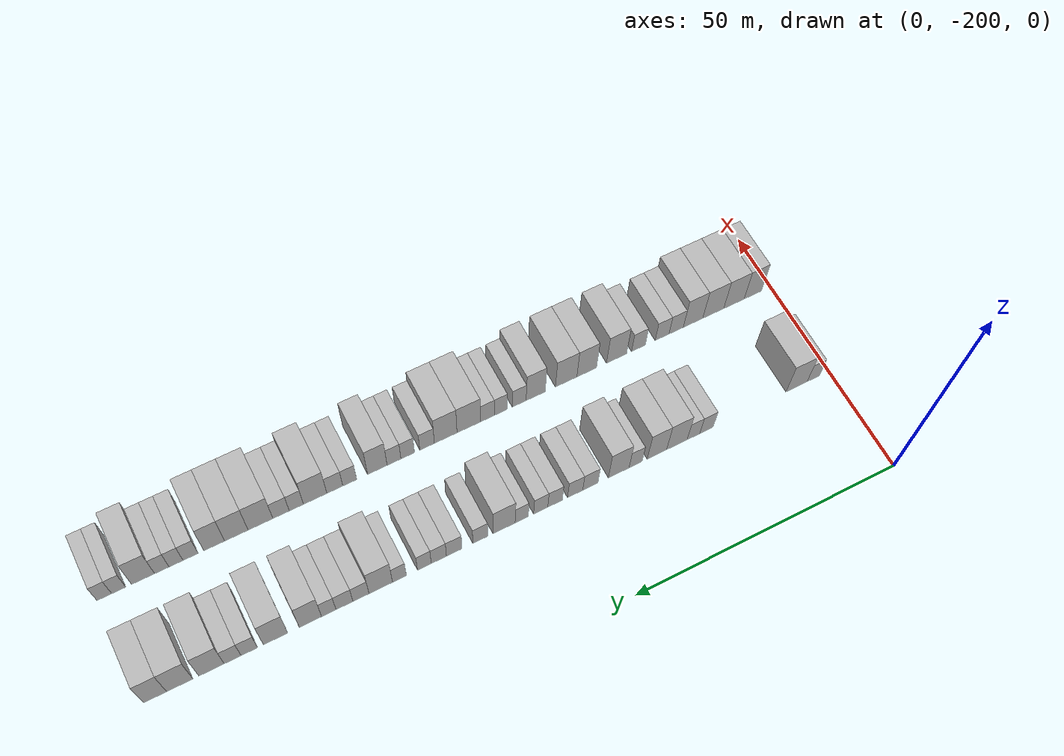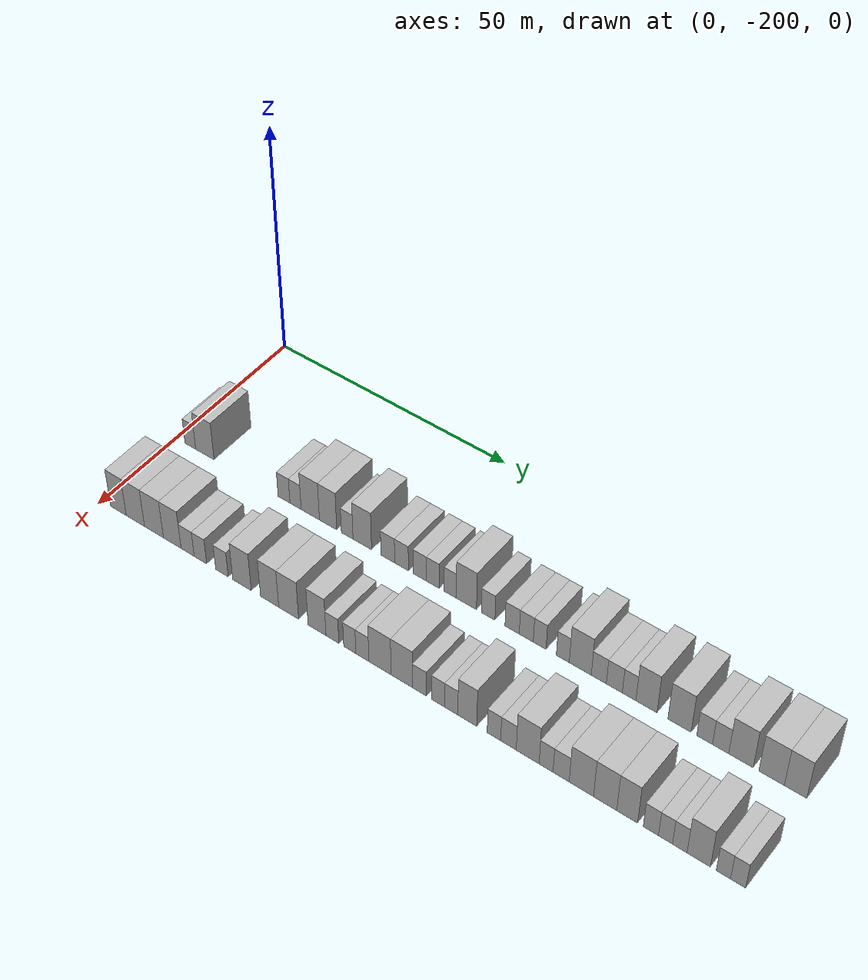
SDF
<sdf version="1.6">
 <world name="default">
  <model name="building_1">
   <static>1</static>
   <pose>25.0000 -196.7380 0 0.000000 0.000000 0.000000</pose>
   <link name="link">
    <pose>0 0 3.00 0 0 0</pose>
    <collision name="collision"><geometry><box><size>10.0000 2.5241 6.0000</size></box></geometry></collision>
    <visual name="visual">
     <cast_shadows>0</cast_shadows>
     <geometry><box><size>10.0000 2.5241 6.0000</size></box></geometry>
     <material>
      <script>
       <uri>model://HANNAS_wall/materials/scripts</uri>
       <uri>model://HANNAS_wall/materials/textures</uri>
       <name>vrc/HANNAS_wall</name>
      </script>
     </material>
    </visual>
   </link>
  </model>
  <model name="building_2">
   <static>1</static>
   <pose>25.0000 -193.3322 0 0.000000 0.000000 0.000000</pose>
   <link name="link">
    <pose>0 0 4.50 0 0 0</pose>
    <collision name="collision"><geometry><box><size>10.0000 4.2874 9.0000</size></box></geometry></collision>
    <visual name="visual">
     <cast_shadows>0</cast_shadows>
     <geometry><box><size>10.0000 4.2874 9.0000</size></box></geometry>
     <material>
      <script>
       <uri>model://HANNAS_wall/materials/scripts</uri>
       <uri>model://HANNAS_wall/materials/textures</uri>
       <name>vrc/HANNAS_wall</name>
      </script>
     </material>
    </visual>
   </link>
  </model>
  <model name="building_3">
   <static>1</static>
   <pose>25.0000 -175.2250 0 0.000000 0.000000 0.000000</pose>
   <link name="link">
    <pose>0 0 3.00 0 0 0</pose>
    <collision name="collision"><geometry><box><size>10.0000 2.6423 6.0000</size></box></geometry></collision>
    <visual name="visual">
     <cast_shadows>0</cast_shadows>
     <geometry><box><size>10.0000 2.6423 6.0000</size></box></geometry>
     <material>
      <script>
       <uri>model://HANNAS_wall/materials/scripts</uri>
       <uri>model://HANNAS_wall/materials/textures</uri>
       <name>vrc/HANNAS_wall</name>
      </script>
     </material>
    </visual>
   </link>
  </model>
  <model name="building_4">
   <static>1</static>
   <pose>25.0000 -172.6611 0 0.000000 0.000000 0.000000</pose>
   <link name="link">
    <pose>0 0 3.00 0 0 0</pose>
    <collision name="collision"><geometry><box><size>10.0000 2.4855 6.0000</size></box></geometry></collision>
    <visual name="visual">
     <cast_shadows>0</cast_shadows>
     <geometry><box><size>10.0000 2.4855 6.0000</size></box></geometry>
     <material>
      <script>
       <uri>model://HANNAS_wall/materials/scripts</uri>
       <uri>model://HANNAS_wall/materials/textures</uri>
       <name>vrc/HANNAS_wall</name>
      </script>
     </material>
    </visual>
   </link>
  </model>
  <model name="building_5">
   <static>1</static>
   <pose>25.0000 -169.4083 0 0.000000 0.000000 0.000000</pose>
   <link name="link">
    <pose>0 0 4.50 0 0 0</pose>
    <collision name="collision"><geometry><box><size>10.0000 4.0203 9.0000</size></box></geometry></collision>
    <visual name="visual">
     <cast_shadows>0</cast_shadows>
     <geometry><box><size>10.0000 4.0203 9.0000</size></box></geometry>
     <material>
      <script>
       <uri>model://HANNAS_wall/materials/scripts</uri>
       <uri>model://HANNAS_wall/materials/textures</uri>
       <name>vrc/HANNAS_wall</name>
      </script>
     </material>
    </visual>
   </link>
  </model>
  <model name="building_6">
   <static>1</static>
   <pose>25.0000 -165.5061 0 0.000000 0.000000 0.000000</pose>
   <link name="link">
    <pose>0 0 4.50 0 0 0</pose>
    <collision name="collision"><geometry><box><size>10.0000 3.7842 9.0000</size></box></geometry></collision>
    <visual name="visual">
     <cast_shadows>0</cast_shadows>
     <geometry><box><size>10.0000 3.7842 9.0000</size></box></geometry>
     <material>
      <script>
       <uri>model://HANNAS_wall/materials/scripts</uri>
       <uri>model://HANNAS_wall/materials/textures</uri>
       <name>vrc/HANNAS_wall</name>
      </script>
     </material>
    </visual>
   </link>
  </model>
  <model name="building_7">
   <static>1</static>
   <pose>25.0000 -161.3549 0 0.000000 0.000000 0.000000</pose>
   <link name="link">
    <pose>0 0 3.00 0 0 0</pose>
    <collision name="collision"><geometry><box><size>10.0000 2.5181 6.0000</size></box></geometry></collision>
    <visual name="visual">
     <cast_shadows>0</cast_shadows>
     <geometry><box><size>10.0000 2.5181 6.0000</size></box></geometry>
     <material>
      <script>
       <uri>model://HANNAS_wall/materials/scripts</uri>
       <uri>model://HANNAS_wall/materials/textures</uri>
       <name>vrc/HANNAS_wall</name>
      </script>
     </material>
    </visual>
   </link>
  </model>
  <model name="building_8">
   <static>1</static>
   <pose>25.0000 -158.1094 0 0.000000 0.000000 0.000000</pose>
   <link name="link">
    <pose>0 0 4.50 0 0 0</pose>
    <collision name="collision"><geometry><box><size>10.0000 3.9730 9.0000</size></box></geometry></collision>
    <visual name="visual">
     <cast_shadows>0</cast_shadows>
     <geometry><box><size>10.0000 3.9730 9.0000</size></box></geometry>
     <material>
      <script>
       <uri>model://HANNAS_wall/materials/scripts</uri>
       <uri>model://HANNAS_wall/materials/textures</uri>
       <name>vrc/HANNAS_wall</name>
      </script>
     </material>
    </visual>
   </link>
  </model>
  <model name="building_9">
   <static>1</static>
   <pose>25.0000 -152.6712 0 0.000000 0.000000 0.000000</pose>
   <link name="link">
    <pose>0 0 3.00 0 0 0</pose>
    <collision name="collision"><geometry><box><size>10.0000 2.9033 6.0000</size></box></geometry></collision>
    <visual name="visual">
     <cast_shadows>0</cast_shadows>
     <geometry><box><size>10.0000 2.9033 6.0000</size></box></geometry>
     <material>
      <script>
       <uri>model://HANNAS_wall/materials/scripts</uri>
       <uri>model://HANNAS_wall/materials/textures</uri>
       <name>vrc/HANNAS_wall</name>
      </script>
     </material>
    </visual>
   </link>
  </model>
  <model name="building_10">
   <static>1</static>
   <pose>25.0000 -149.7835 0 0.000000 0.000000 0.000000</pose>
   <link name="link">
    <pose>0 0 3.00 0 0 0</pose>
    <collision name="collision"><geometry><box><size>10.0000 2.8720 6.0000</size></box></geometry></collision>
    <visual name="visual">
     <cast_shadows>0</cast_shadows>
     <geometry><box><size>10.0000 2.8720 6.0000</size></box></geometry>
     <material>
      <script>
       <uri>model://HANNAS_wall/materials/scripts</uri>
       <uri>model://HANNAS_wall/materials/textures</uri>
       <name>vrc/HANNAS_wall</name>
      </script>
     </material>
    </visual>
   </link>
  </model>
  <model name="building_11">
   <static>1</static>
   <pose>25.0000 -145.9780 0 0.000000 0.000000 0.000000</pose>
   <link name="link">
    <pose>0 0 3.00 0 0 0</pose>
    <collision name="collision"><geometry><box><size>10.0000 2.7389 6.0000</size></box></geometry></collision>
    <visual name="visual">
     <cast_shadows>0</cast_shadows>
     <geometry><box><size>10.0000 2.7389 6.0000</size></box></geometry>
     <material>
      <script>
       <uri>model://HANNAS_wall/materials/scripts</uri>
       <uri>model://HANNAS_wall/materials/textures</uri>
       <name>vrc/HANNAS_wall</name>
      </script>
     </material>
    </visual>
   </link>
  </model>
  <model name="building_12">
   <static>1</static>
   <pose>25.0000 -143.2816 0 0.000000 0.000000 0.000000</pose>
   <link name="link">
    <pose>0 0 3.00 0 0 0</pose>
    <collision name="collision"><geometry><box><size>10.0000 2.6540 6.0000</size></box></geometry></collision>
    <visual name="visual">
     <cast_shadows>0</cast_shadows>
     <geometry><box><size>10.0000 2.6540 6.0000</size></box></geometry>
     <material>
      <script>
       <uri>model://HANNAS_wall/materials/scripts</uri>
       <uri>model://HANNAS_wall/materials/textures</uri>
       <name>vrc/HANNAS_wall</name>
      </script>
     </material>
    </visual>
   </link>
  </model>
  <model name="building_13">
   <static>1</static>
   <pose>25.0000 -139.7228 0 0.000000 0.000000 0.000000</pose>
   <link name="link">
    <pose>0 0 3.00 0 0 0</pose>
    <collision name="collision"><geometry><box><size>10.0000 2.4635 6.0000</size></box></geometry></collision>
    <visual name="visual">
     <cast_shadows>0</cast_shadows>
     <geometry><box><size>10.0000 2.4635 6.0000</size></box></geometry>
     <material>
      <script>
       <uri>model://HANNAS_wall/materials/scripts</uri>
       <uri>model://HANNAS_wall/materials/textures</uri>
       <name>vrc/HANNAS_wall</name>
      </script>
     </material>
    </visual>
   </link>
  </model>
  <model name="building_14">
   <static>1</static>
   <pose>25.0000 -136.4352 0 0.000000 0.000000 0.000000</pose>
   <link name="link">
    <pose>0 0 4.50 0 0 0</pose>
    <collision name="collision"><geometry><box><size>10.0000 4.1118 9.0000</size></box></geometry></collision>
    <visual name="visual">
     <cast_shadows>0</cast_shadows>
     <geometry><box><size>10.0000 4.1118 9.0000</size></box></geometry>
     <material>
      <script>
       <uri>model://HANNAS_wall/materials/scripts</uri>
       <uri>model://HANNAS_wall/materials/textures</uri>
       <name>vrc/HANNAS_wall</name>
      </script>
     </material>
    </visual>
   </link>
  </model>
  <model name="building_15">
   <static>1</static>
   <pose>25.0000 -132.0211 0 0.000000 0.000000 0.000000</pose>
   <link name="link">
    <pose>0 0 3.00 0 0 0</pose>
    <collision name="collision"><geometry><box><size>10.0000 2.7164 6.0000</size></box></geometry></collision>
    <visual name="visual">
     <cast_shadows>0</cast_shadows>
     <geometry><box><size>10.0000 2.7164 6.0000</size></box></geometry>
     <material>
      <script>
       <uri>model://HANNAS_wall/materials/scripts</uri>
       <uri>model://HANNAS_wall/materials/textures</uri>
       <name>vrc/HANNAS_wall</name>
      </script>
     </material>
    </visual>
   </link>
  </model>
  <model name="building_16">
   <static>1</static>
   <pose>25.0000 -127.2485 0 0.000000 0.000000 0.000000</pose>
   <link name="link">
    <pose>0 0 3.00 0 0 0</pose>
    <collision name="collision"><geometry><box><size>10.0000 2.8289 6.0000</size></box></geometry></collision>
    <visual name="visual">
     <cast_shadows>0</cast_shadows>
     <geometry><box><size>10.0000 2.8289 6.0000</size></box></geometry>
     <material>
      <script>
       <uri>model://HANNAS_wall/materials/scripts</uri>
       <uri>model://HANNAS_wall/materials/textures</uri>
       <name>vrc/HANNAS_wall</name>
      </script>
     </material>
    </visual>
   </link>
  </model>
  <model name="building_17">
   <static>1</static>
   <pose>25.0000 -124.4557 0 0.000000 0.000000 0.000000</pose>
   <link name="link">
    <pose>0 0 3.00 0 0 0</pose>
    <collision name="collision"><geometry><box><size>10.0000 2.7568 6.0000</size></box></geometry></collision>
    <visual name="visual">
     <cast_shadows>0</cast_shadows>
     <geometry><box><size>10.0000 2.7568 6.0000</size></box></geometry>
     <material>
      <script>
       <uri>model://HANNAS_wall/materials/scripts</uri>
       <uri>model://HANNAS_wall/materials/textures</uri>
       <name>vrc/HANNAS_wall</name>
      </script>
     </material>
    </visual>
   </link>
  </model>
  <model name="building_18">
   <static>1</static>
   <pose>25.0000 -121.8323 0 0.000000 0.000000 0.000000</pose>
   <link name="link">
    <pose>0 0 3.00 0 0 0</pose>
    <collision name="collision"><geometry><box><size>10.0000 2.4898 6.0000</size></box></geometry></collision>
    <visual name="visual">
     <cast_shadows>0</cast_shadows>
     <geometry><box><size>10.0000 2.4898 6.0000</size></box></geometry>
     <material>
      <script>
       <uri>model://HANNAS_wall/materials/scripts</uri>
       <uri>model://HANNAS_wall/materials/textures</uri>
       <name>vrc/HANNAS_wall</name>
      </script>
     </material>
    </visual>
   </link>
  </model>
  <model name="building_19">
   <static>1</static>
   <pose>25.0000 -117.3427 0 0.000000 0.000000 0.000000</pose>
   <link name="link">
    <pose>0 0 3.00 0 0 0</pose>
    <collision name="collision"><geometry><box><size>10.0000 2.4895 6.0000</size></box></geometry></collision>
    <visual name="visual">
     <cast_shadows>0</cast_shadows>
     <geometry><box><size>10.0000 2.4895 6.0000</size></box></geometry>
     <material>
      <script>
       <uri>model://HANNAS_wall/materials/scripts</uri>
       <uri>model://HANNAS_wall/materials/textures</uri>
       <name>vrc/HANNAS_wall</name>
      </script>
     </material>
    </visual>
   </link>
  </model>
  <model name="building_20">
   <static>1</static>
   <pose>25.0000 -113.9905 0 0.000000 0.000000 0.000000</pose>
   <link name="link">
    <pose>0 0 4.50 0 0 0</pose>
    <collision name="collision"><geometry><box><size>10.0000 4.2148 9.0000</size></box></geometry></collision>
    <visual name="visual">
     <cast_shadows>0</cast_shadows>
     <geometry><box><size>10.0000 4.2148 9.0000</size></box></geometry>
     <material>
      <script>
       <uri>model://HANNAS_wall/materials/scripts</uri>
       <uri>model://HANNAS_wall/materials/textures</uri>
       <name>vrc/HANNAS_wall</name>
      </script>
     </material>
    </visual>
   </link>
  </model>
  <model name="building_21">
   <static>1</static>
   <pose>25.0000 -110.4575 0 0.000000 0.000000 0.000000</pose>
   <link name="link">
    <pose>0 0 3.00 0 0 0</pose>
    <collision name="collision"><geometry><box><size>10.0000 2.8513 6.0000</size></box></geometry></collision>
    <visual name="visual">
     <cast_shadows>0</cast_shadows>
     <geometry><box><size>10.0000 2.8513 6.0000</size></box></geometry>
     <material>
      <script>
       <uri>model://HANNAS_wall/materials/scripts</uri>
       <uri>model://HANNAS_wall/materials/textures</uri>
       <name>vrc/HANNAS_wall</name>
      </script>
     </material>
    </visual>
   </link>
  </model>
  <model name="building_22">
   <static>1</static>
   <pose>25.0000 -107.5320 0 0.000000 0.000000 0.000000</pose>
   <link name="link">
    <pose>0 0 3.00 0 0 0</pose>
    <collision name="collision"><geometry><box><size>10.0000 2.9997 6.0000</size></box></geometry></collision>
    <visual name="visual">
     <cast_shadows>0</cast_shadows>
     <geometry><box><size>10.0000 2.9997 6.0000</size></box></geometry>
     <material>
      <script>
       <uri>model://HANNAS_wall/materials/scripts</uri>
       <uri>model://HANNAS_wall/materials/textures</uri>
       <name>vrc/HANNAS_wall</name>
      </script>
     </material>
    </visual>
   </link>
  </model>
  <model name="building_23">
   <static>1</static>
   <pose>25.0000 -104.7620 0 0.000000 0.000000 0.000000</pose>
   <link name="link">
    <pose>0 0 3.00 0 0 0</pose>
    <collision name="collision"><geometry><box><size>10.0000 2.5403 6.0000</size></box></geometry></collision>
    <visual name="visual">
     <cast_shadows>0</cast_shadows>
     <geometry><box><size>10.0000 2.5403 6.0000</size></box></geometry>
     <material>
      <script>
       <uri>model://HANNAS_wall/materials/scripts</uri>
       <uri>model://HANNAS_wall/materials/textures</uri>
       <name>vrc/HANNAS_wall</name>
      </script>
     </material>
    </visual>
   </link>
  </model>
  <model name="building_24">
   <static>1</static>
   <pose>25.0000 -101.5410 0 0.000000 0.000000 0.000000</pose>
   <link name="link">
    <pose>0 0 4.50 0 0 0</pose>
    <collision name="collision"><geometry><box><size>10.0000 3.9016 9.0000</size></box></geometry></collision>
    <visual name="visual">
     <cast_shadows>0</cast_shadows>
     <geometry><box><size>10.0000 3.9016 9.0000</size></box></geometry>
     <material>
      <script>
       <uri>model://HANNAS_wall/materials/scripts</uri>
       <uri>model://HANNAS_wall/materials/textures</uri>
       <name>vrc/HANNAS_wall</name>
      </script>
     </material>
    </visual>
   </link>
  </model>
  <model name="building_25">
   <static>1</static>
   <pose>25.0000 -95.4737 0 0.000000 0.000000 0.000000</pose>
   <link name="link">
    <pose>0 0 4.50 0 0 0</pose>
    <collision name="collision"><geometry><box><size>10.0000 4.2329 9.0000</size></box></geometry></collision>
    <visual name="visual">
     <cast_shadows>0</cast_shadows>
     <geometry><box><size>10.0000 4.2329 9.0000</size></box></geometry>
     <material>
      <script>
       <uri>model://HANNAS_wall/materials/scripts</uri>
       <uri>model://HANNAS_wall/materials/textures</uri>
       <name>vrc/HANNAS_wall</name>
      </script>
     </material>
    </visual>
   </link>
  </model>
  <model name="building_26">
   <static>1</static>
   <pose>25.0000 -90.9416 0 0.000000 0.000000 0.000000</pose>
   <link name="link">
    <pose>0 0 3.00 0 0 0</pose>
    <collision name="collision"><geometry><box><size>10.0000 2.8314 6.0000</size></box></geometry></collision>
    <visual name="visual">
     <cast_shadows>0</cast_shadows>
     <geometry><box><size>10.0000 2.8314 6.0000</size></box></geometry>
     <material>
      <script>
       <uri>model://HANNAS_wall/materials/scripts</uri>
       <uri>model://HANNAS_wall/materials/textures</uri>
       <name>vrc/HANNAS_wall</name>
      </script>
     </material>
    </visual>
   </link>
  </model>
  <model name="building_27">
   <static>1</static>
   <pose>25.0000 -88.0815 0 0.000000 0.000000 0.000000</pose>
   <link name="link">
    <pose>0 0 3.00 0 0 0</pose>
    <collision name="collision"><geometry><box><size>10.0000 2.8888 6.0000</size></box></geometry></collision>
    <visual name="visual">
     <cast_shadows>0</cast_shadows>
     <geometry><box><size>10.0000 2.8888 6.0000</size></box></geometry>
     <material>
      <script>
       <uri>model://HANNAS_wall/materials/scripts</uri>
       <uri>model://HANNAS_wall/materials/textures</uri>
       <name>vrc/HANNAS_wall</name>
      </script>
     </material>
    </visual>
   </link>
  </model>
  <model name="building_28">
   <static>1</static>
   <pose>25.0000 -84.4759 0 0.000000 0.000000 0.000000</pose>
   <link name="link">
    <pose>0 0 4.50 0 0 0</pose>
    <collision name="collision"><geometry><box><size>10.0000 4.3225 9.0000</size></box></geometry></collision>
    <visual name="visual">
     <cast_shadows>0</cast_shadows>
     <geometry><box><size>10.0000 4.3225 9.0000</size></box></geometry>
     <material>
      <script>
       <uri>model://HANNAS_wall/materials/scripts</uri>
       <uri>model://HANNAS_wall/materials/textures</uri>
       <name>vrc/HANNAS_wall</name>
      </script>
     </material>
    </visual>
   </link>
  </model>
  <model name="building_29">
   <static>1</static>
   <pose>25.0000 -79.1001 0 0.000000 0.000000 0.000000</pose>
   <link name="link">
    <pose>0 0 4.50 0 0 0</pose>
    <collision name="collision"><geometry><box><size>10.0000 4.4290 9.0000</size></box></geometry></collision>
    <visual name="visual">
     <cast_shadows>0</cast_shadows>
     <geometry><box><size>10.0000 4.4290 9.0000</size></box></geometry>
     <material>
      <script>
       <uri>model://HANNAS_wall/materials/scripts</uri>
       <uri>model://HANNAS_wall/materials/textures</uri>
       <name>vrc/HANNAS_wall</name>
      </script>
     </material>
    </visual>
   </link>
  </model>
  <model name="building_30">
   <static>1</static>
   <pose>25.0000 -74.9526 0 0.000000 0.000000 0.000000</pose>
   <link name="link">
    <pose>0 0 4.50 0 0 0</pose>
    <collision name="collision"><geometry><box><size>10.0000 3.8659 9.0000</size></box></geometry></collision>
    <visual name="visual">
     <cast_shadows>0</cast_shadows>
     <geometry><box><size>10.0000 3.8659 9.0000</size></box></geometry>
     <material>
      <script>
       <uri>model://HANNAS_wall/materials/scripts</uri>
       <uri>model://HANNAS_wall/materials/textures</uri>
       <name>vrc/HANNAS_wall</name>
      </script>
     </material>
    </visual>
   </link>
  </model>
  <model name="building_93">
   <static>1</static>
   <pose>44.0000 -196.1881 0 0.000000 0.000000 0.000000</pose>
   <link name="link">
    <pose>0 0 4.50 0 0 0</pose>
    <collision name="collision"><geometry><box><size>10.0000 3.6237 9.0000</size></box></geometry></collision>
    <visual name="visual">
     <cast_shadows>0</cast_shadows>
     <geometry><box><size>10.0000 3.6237 9.0000</size></box></geometry>
     <material>
      <script>
       <uri>model://HANNAS_wall/materials/scripts</uri>
       <uri>model://HANNAS_wall/materials/textures</uri>
       <name>vrc/HANNAS_wall</name>
      </script>
     </material>
    </visual>
   </link>
  </model>
  <model name="building_94">
   <static>1</static>
   <pose>44.0000 -192.2690 0 0.000000 0.000000 0.000000</pose>
   <link name="link">
    <pose>0 0 4.50 0 0 0</pose>
    <collision name="collision"><geometry><box><size>10.0000 4.2146 9.0000</size></box></geometry></collision>
    <visual name="visual">
     <cast_shadows>0</cast_shadows>
     <geometry><box><size>10.0000 4.2146 9.0000</size></box></geometry>
     <material>
      <script>
       <uri>model://HANNAS_wall/materials/scripts</uri>
       <uri>model://HANNAS_wall/materials/textures</uri>
       <name>vrc/HANNAS_wall</name>
      </script>
     </material>
    </visual>
   </link>
  </model>
  <model name="building_95">
   <static>1</static>
   <pose>44.0000 -188.0043 0 0.000000 0.000000 0.000000</pose>
   <link name="link">
    <pose>0 0 4.50 0 0 0</pose>
    <collision name="collision"><geometry><box><size>10.0000 4.3147 9.0000</size></box></geometry></collision>
    <visual name="visual">
     <cast_shadows>0</cast_shadows>
     <geometry><box><size>10.0000 4.3147 9.0000</size></box></geometry>
     <material>
      <script>
       <uri>model://HANNAS_wall/materials/scripts</uri>
       <uri>model://HANNAS_wall/materials/textures</uri>
       <name>vrc/HANNAS_wall</name>
      </script>
     </material>
    </visual>
   </link>
  </model>
  <model name="building_96">
   <static>1</static>
   <pose>44.0000 -183.8520 0 0.000000 0.000000 0.000000</pose>
   <link name="link">
    <pose>0 0 4.50 0 0 0</pose>
    <collision name="collision"><geometry><box><size>10.0000 3.9899 9.0000</size></box></geometry></collision>
    <visual name="visual">
     <cast_shadows>0</cast_shadows>
     <geometry><box><size>10.0000 3.9899 9.0000</size></box></geometry>
     <material>
      <script>
       <uri>model://HANNAS_wall/materials/scripts</uri>
       <uri>model://HANNAS_wall/materials/textures</uri>
       <name>vrc/HANNAS_wall</name>
      </script>
     </material>
    </visual>
   </link>
  </model>
  <model name="building_97">
   <static>1</static>
   <pose>44.0000 -180.3942 0 0.000000 0.000000 0.000000</pose>
   <link name="link">
    <pose>0 0 3.00 0 0 0</pose>
    <collision name="collision"><geometry><box><size>10.0000 2.9257 6.0000</size></box></geometry></collision>
    <visual name="visual">
     <cast_shadows>0</cast_shadows>
     <geometry><box><size>10.0000 2.9257 6.0000</size></box></geometry>
     <material>
      <script>
       <uri>model://HANNAS_wall/materials/scripts</uri>
       <uri>model://HANNAS_wall/materials/textures</uri>
       <name>vrc/HANNAS_wall</name>
      </script>
     </material>
    </visual>
   </link>
  </model>
  <model name="building_98">
   <static>1</static>
   <pose>44.0000 -177.5405 0 0.000000 0.000000 0.000000</pose>
   <link name="link">
    <pose>0 0 3.00 0 0 0</pose>
    <collision name="collision"><geometry><box><size>10.0000 2.7817 6.0000</size></box></geometry></collision>
    <visual name="visual">
     <cast_shadows>0</cast_shadows>
     <geometry><box><size>10.0000 2.7817 6.0000</size></box></geometry>
     <material>
      <script>
       <uri>model://HANNAS_wall/materials/scripts</uri>
       <uri>model://HANNAS_wall/materials/textures</uri>
       <name>vrc/HANNAS_wall</name>
      </script>
     </material>
    </visual>
   </link>
  </model>
  <model name="building_99">
   <static>1</static>
   <pose>44.0000 -172.7691 0 0.000000 0.000000 0.000000</pose>
   <link name="link">
    <pose>0 0 3.00 0 0 0</pose>
    <collision name="collision"><geometry><box><size>10.0000 2.7611 6.0000</size></box></geometry></collision>
    <visual name="visual">
     <cast_shadows>0</cast_shadows>
     <geometry><box><size>10.0000 2.7611 6.0000</size></box></geometry>
     <material>
      <script>
       <uri>model://HANNAS_wall/materials/scripts</uri>
       <uri>model://HANNAS_wall/materials/textures</uri>
       <name>vrc/HANNAS_wall</name>
      </script>
     </material>
    </visual>
   </link>
  </model>
  <model name="building_100">
   <static>1</static>
   <pose>44.0000 -168.3853 0 0.000000 0.000000 0.000000</pose>
   <link name="link">
    <pose>0 0 4.50 0 0 0</pose>
    <collision name="collision"><geometry><box><size>10.0000 4.0064 9.0000</size></box></geometry></collision>
    <visual name="visual">
     <cast_shadows>0</cast_shadows>
     <geometry><box><size>10.0000 4.0064 9.0000</size></box></geometry>
     <material>
      <script>
       <uri>model://HANNAS_wall/materials/scripts</uri>
       <uri>model://HANNAS_wall/materials/textures</uri>
       <name>vrc/HANNAS_wall</name>
      </script>
     </material>
    </visual>
   </link>
  </model>
  <model name="building_101">
   <static>1</static>
   <pose>44.0000 -162.4425 0 0.000000 0.000000 0.000000</pose>
   <link name="link">
    <pose>0 0 4.50 0 0 0</pose>
    <collision name="collision"><geometry><box><size>10.0000 3.8792 9.0000</size></box></geometry></collision>
    <visual name="visual">
     <cast_shadows>0</cast_shadows>
     <geometry><box><size>10.0000 3.8792 9.0000</size></box></geometry>
     <material>
      <script>
       <uri>model://HANNAS_wall/materials/scripts</uri>
       <uri>model://HANNAS_wall/materials/textures</uri>
       <name>vrc/HANNAS_wall</name>
      </script>
     </material>
    </visual>
   </link>
  </model>
  <model name="building_102">
   <static>1</static>
   <pose>44.0000 -158.3951 0 0.000000 0.000000 0.000000</pose>
   <link name="link">
    <pose>0 0 4.50 0 0 0</pose>
    <collision name="collision"><geometry><box><size>10.0000 4.2155 9.0000</size></box></geometry></collision>
    <visual name="visual">
     <cast_shadows>0</cast_shadows>
     <geometry><box><size>10.0000 4.2155 9.0000</size></box></geometry>
     <material>
      <script>
       <uri>model://HANNAS_wall/materials/scripts</uri>
       <uri>model://HANNAS_wall/materials/textures</uri>
       <name>vrc/HANNAS_wall</name>
      </script>
     </material>
    </visual>
   </link>
  </model>
  <model name="building_103">
   <static>1</static>
   <pose>44.0000 -152.4201 0 0.000000 0.000000 0.000000</pose>
   <link name="link">
    <pose>0 0 4.50 0 0 0</pose>
    <collision name="collision"><geometry><box><size>10.0000 3.7347 9.0000</size></box></geometry></collision>
    <visual name="visual">
     <cast_shadows>0</cast_shadows>
     <geometry><box><size>10.0000 3.7347 9.0000</size></box></geometry>
     <material>
      <script>
       <uri>model://HANNAS_wall/materials/scripts</uri>
       <uri>model://HANNAS_wall/materials/textures</uri>
       <name>vrc/HANNAS_wall</name>
      </script>
     </material>
    </visual>
   </link>
  </model>
  <model name="building_104">
   <static>1</static>
   <pose>44.0000 -149.2255 0 0.000000 0.000000 0.000000</pose>
   <link name="link">
    <pose>0 0 3.00 0 0 0</pose>
    <collision name="collision"><geometry><box><size>10.0000 2.6544 6.0000</size></box></geometry></collision>
    <visual name="visual">
     <cast_shadows>0</cast_shadows>
     <geometry><box><size>10.0000 2.6544 6.0000</size></box></geometry>
     <material>
      <script>
       <uri>model://HANNAS_wall/materials/scripts</uri>
       <uri>model://HANNAS_wall/materials/textures</uri>
       <name>vrc/HANNAS_wall</name>
      </script>
     </material>
    </visual>
   </link>
  </model>
  <model name="building_105">
   <static>1</static>
   <pose>44.0000 -145.6554 0 0.000000 0.000000 0.000000</pose>
   <link name="link">
    <pose>0 0 3.00 0 0 0</pose>
    <collision name="collision"><geometry><box><size>10.0000 2.4858 6.0000</size></box></geometry></collision>
    <visual name="visual">
     <cast_shadows>0</cast_shadows>
     <geometry><box><size>10.0000 2.4858 6.0000</size></box></geometry>
     <material>
      <script>
       <uri>model://HANNAS_wall/materials/scripts</uri>
       <uri>model://HANNAS_wall/materials/textures</uri>
       <name>vrc/HANNAS_wall</name>
      </script>
     </material>
    </visual>
   </link>
  </model>
  <model name="building_106">
   <static>1</static>
   <pose>44.0000 -143.0840 0 0.000000 0.000000 0.000000</pose>
   <link name="link">
    <pose>0 0 3.00 0 0 0</pose>
    <collision name="collision"><geometry><box><size>10.0000 2.6570 6.0000</size></box></geometry></collision>
    <visual name="visual">
     <cast_shadows>0</cast_shadows>
     <geometry><box><size>10.0000 2.6570 6.0000</size></box></geometry>
     <material>
      <script>
       <uri>model://HANNAS_wall/materials/scripts</uri>
       <uri>model://HANNAS_wall/materials/textures</uri>
       <name>vrc/HANNAS_wall</name>
      </script>
     </material>
    </visual>
   </link>
  </model>
  <model name="building_107">
   <static>1</static>
   <pose>44.0000 -139.5236 0 0.000000 0.000000 0.000000</pose>
   <link name="link">
    <pose>0 0 4.50 0 0 0</pose>
    <collision name="collision"><geometry><box><size>10.0000 4.4638 9.0000</size></box></geometry></collision>
    <visual name="visual">
     <cast_shadows>0</cast_shadows>
     <geometry><box><size>10.0000 4.4638 9.0000</size></box></geometry>
     <material>
      <script>
       <uri>model://HANNAS_wall/materials/scripts</uri>
       <uri>model://HANNAS_wall/materials/textures</uri>
       <name>vrc/HANNAS_wall</name>
      </script>
     </material>
    </visual>
   </link>
  </model>
  <model name="building_108">
   <static>1</static>
   <pose>44.0000 -135.1486 0 0.000000 0.000000 0.000000</pose>
   <link name="link">
    <pose>0 0 4.50 0 0 0</pose>
    <collision name="collision"><geometry><box><size>10.0000 4.2860 9.0000</size></box></geometry></collision>
    <visual name="visual">
     <cast_shadows>0</cast_shadows>
     <geometry><box><size>10.0000 4.2860 9.0000</size></box></geometry>
     <material>
      <script>
       <uri>model://HANNAS_wall/materials/scripts</uri>
       <uri>model://HANNAS_wall/materials/textures</uri>
       <name>vrc/HANNAS_wall</name>
      </script>
     </material>
    </visual>
   </link>
  </model>
  <model name="building_109">
   <static>1</static>
   <pose>44.0000 -131.6345 0 0.000000 0.000000 0.000000</pose>
   <link name="link">
    <pose>0 0 3.00 0 0 0</pose>
    <collision name="collision"><geometry><box><size>10.0000 2.7424 6.0000</size></box></geometry></collision>
    <visual name="visual">
     <cast_shadows>0</cast_shadows>
     <geometry><box><size>10.0000 2.7424 6.0000</size></box></geometry>
     <material>
      <script>
       <uri>model://HANNAS_wall/materials/scripts</uri>
       <uri>model://HANNAS_wall/materials/textures</uri>
       <name>vrc/HANNAS_wall</name>
      </script>
     </material>
    </visual>
   </link>
  </model>
  <model name="building_110">
   <static>1</static>
   <pose>44.0000 -127.9995 0 0.000000 0.000000 0.000000</pose>
   <link name="link">
    <pose>0 0 3.00 0 0 0</pose>
    <collision name="collision"><geometry><box><size>10.0000 2.5275 6.0000</size></box></geometry></collision>
    <visual name="visual">
     <cast_shadows>0</cast_shadows>
     <geometry><box><size>10.0000 2.5275 6.0000</size></box></geometry>
     <material>
      <script>
       <uri>model://HANNAS_wall/materials/scripts</uri>
       <uri>model://HANNAS_wall/materials/textures</uri>
       <name>vrc/HANNAS_wall</name>
      </script>
     </material>
    </visual>
   </link>
  </model>
  <model name="building_111">
   <static>1</static>
   <pose>44.0000 -125.4479 0 0.000000 0.000000 0.000000</pose>
   <link name="link">
    <pose>0 0 3.00 0 0 0</pose>
    <collision name="collision"><geometry><box><size>10.0000 2.5758 6.0000</size></box></geometry></collision>
    <visual name="visual">
     <cast_shadows>0</cast_shadows>
     <geometry><box><size>10.0000 2.5758 6.0000</size></box></geometry>
     <material>
      <script>
       <uri>model://HANNAS_wall/materials/scripts</uri>
       <uri>model://HANNAS_wall/materials/textures</uri>
       <name>vrc/HANNAS_wall</name>
      </script>
     </material>
    </visual>
   </link>
  </model>
  <model name="building_112">
   <static>1</static>
   <pose>44.0000 -122.3434 0 0.000000 0.000000 0.000000</pose>
   <link name="link">
    <pose>0 0 4.50 0 0 0</pose>
    <collision name="collision"><geometry><box><size>10.0000 3.6330 9.0000</size></box></geometry></collision>
    <visual name="visual">
     <cast_shadows>0</cast_shadows>
     <geometry><box><size>10.0000 3.6330 9.0000</size></box></geometry>
     <material>
      <script>
       <uri>model://HANNAS_wall/materials/scripts</uri>
       <uri>model://HANNAS_wall/materials/textures</uri>
       <name>vrc/HANNAS_wall</name>
      </script>
     </material>
    </visual>
   </link>
  </model>
  <model name="building_113">
   <static>1</static>
   <pose>44.0000 -117.2456 0 0.000000 0.000000 0.000000</pose>
   <link name="link">
    <pose>0 0 3.00 0 0 0</pose>
    <collision name="collision"><geometry><box><size>10.0000 2.5627 6.0000</size></box></geometry></collision>
    <visual name="visual">
     <cast_shadows>0</cast_shadows>
     <geometry><box><size>10.0000 2.5627 6.0000</size></box></geometry>
     <material>
      <script>
       <uri>model://HANNAS_wall/materials/scripts</uri>
       <uri>model://HANNAS_wall/materials/textures</uri>
       <name>vrc/HANNAS_wall</name>
      </script>
     </material>
    </visual>
   </link>
  </model>
  <model name="building_114">
   <static>1</static>
   <pose>44.0000 -114.5033 0 0.000000 0.000000 0.000000</pose>
   <link name="link">
    <pose>0 0 3.00 0 0 0</pose>
    <collision name="collision"><geometry><box><size>10.0000 2.9218 6.0000</size></box></geometry></collision>
    <visual name="visual">
     <cast_shadows>0</cast_shadows>
     <geometry><box><size>10.0000 2.9218 6.0000</size></box></geometry>
     <material>
      <script>
       <uri>model://HANNAS_wall/materials/scripts</uri>
       <uri>model://HANNAS_wall/materials/textures</uri>
       <name>vrc/HANNAS_wall</name>
      </script>
     </material>
    </visual>
   </link>
  </model>
  <model name="building_115">
   <static>1</static>
   <pose>44.0000 -110.9093 0 0.000000 0.000000 0.000000</pose>
   <link name="link">
    <pose>0 0 4.50 0 0 0</pose>
    <collision name="collision"><geometry><box><size>10.0000 4.2661 9.0000</size></box></geometry></collision>
    <visual name="visual">
     <cast_shadows>0</cast_shadows>
     <geometry><box><size>10.0000 4.2661 9.0000</size></box></geometry>
     <material>
      <script>
       <uri>model://HANNAS_wall/materials/scripts</uri>
       <uri>model://HANNAS_wall/materials/textures</uri>
       <name>vrc/HANNAS_wall</name>
      </script>
     </material>
    </visual>
   </link>
  </model>
  <model name="building_116">
   <static>1</static>
   <pose>44.0000 -107.4908 0 0.000000 0.000000 0.000000</pose>
   <link name="link">
    <pose>0 0 3.00 0 0 0</pose>
    <collision name="collision"><geometry><box><size>10.0000 2.5709 6.0000</size></box></geometry></collision>
    <visual name="visual">
     <cast_shadows>0</cast_shadows>
     <geometry><box><size>10.0000 2.5709 6.0000</size></box></geometry>
     <material>
      <script>
       <uri>model://HANNAS_wall/materials/scripts</uri>
       <uri>model://HANNAS_wall/materials/textures</uri>
       <name>vrc/HANNAS_wall</name>
      </script>
     </material>
    </visual>
   </link>
  </model>
  <model name="building_117">
   <static>1</static>
   <pose>44.0000 -104.7237 0 0.000000 0.000000 0.000000</pose>
   <link name="link">
    <pose>0 0 3.00 0 0 0</pose>
    <collision name="collision"><geometry><box><size>10.0000 2.9633 6.0000</size></box></geometry></collision>
    <visual name="visual">
     <cast_shadows>0</cast_shadows>
     <geometry><box><size>10.0000 2.9633 6.0000</size></box></geometry>
     <material>
      <script>
       <uri>model://HANNAS_wall/materials/scripts</uri>
       <uri>model://HANNAS_wall/materials/textures</uri>
       <name>vrc/HANNAS_wall</name>
      </script>
     </material>
    </visual>
   </link>
  </model>
  <model name="building_118">
   <static>1</static>
   <pose>44.0000 -101.0277 0 0.000000 0.000000 0.000000</pose>
   <link name="link">
    <pose>0 0 4.50 0 0 0</pose>
    <collision name="collision"><geometry><box><size>10.0000 4.4286 9.0000</size></box></geometry></collision>
    <visual name="visual">
     <cast_shadows>0</cast_shadows>
     <geometry><box><size>10.0000 4.4286 9.0000</size></box></geometry>
     <material>
      <script>
       <uri>model://HANNAS_wall/materials/scripts</uri>
       <uri>model://HANNAS_wall/materials/textures</uri>
       <name>vrc/HANNAS_wall</name>
      </script>
     </material>
    </visual>
   </link>
  </model>
  <model name="building_119">
   <static>1</static>
   <pose>44.0000 -96.7321 0 0.000000 0.000000 0.000000</pose>
   <link name="link">
    <pose>0 0 4.50 0 0 0</pose>
    <collision name="collision"><geometry><box><size>10.0000 4.1625 9.0000</size></box></geometry></collision>
    <visual name="visual">
     <cast_shadows>0</cast_shadows>
     <geometry><box><size>10.0000 4.1625 9.0000</size></box></geometry>
     <material>
      <script>
       <uri>model://HANNAS_wall/materials/scripts</uri>
       <uri>model://HANNAS_wall/materials/textures</uri>
       <name>vrc/HANNAS_wall</name>
      </script>
     </material>
    </visual>
   </link>
  </model>
  <model name="building_120">
   <static>1</static>
   <pose>44.0000 -92.8073 0 0.000000 0.000000 0.000000</pose>
   <link name="link">
    <pose>0 0 4.50 0 0 0</pose>
    <collision name="collision"><geometry><box><size>10.0000 3.6871 9.0000</size></box></geometry></collision>
    <visual name="visual">
     <cast_shadows>0</cast_shadows>
     <geometry><box><size>10.0000 3.6871 9.0000</size></box></geometry>
     <material>
      <script>
       <uri>model://HANNAS_wall/materials/scripts</uri>
       <uri>model://HANNAS_wall/materials/textures</uri>
       <name>vrc/HANNAS_wall</name>
      </script>
     </material>
    </visual>
   </link>
  </model>
  <model name="building_121">
   <static>1</static>
   <pose>44.0000 -88.6344 0 0.000000 0.000000 0.000000</pose>
   <link name="link">
    <pose>0 0 3.00 0 0 0</pose>
    <collision name="collision"><geometry><box><size>10.0000 2.6587 6.0000</size></box></geometry></collision>
    <visual name="visual">
     <cast_shadows>0</cast_shadows>
     <geometry><box><size>10.0000 2.6587 6.0000</size></box></geometry>
     <material>
      <script>
       <uri>model://HANNAS_wall/materials/scripts</uri>
       <uri>model://HANNAS_wall/materials/textures</uri>
       <name>vrc/HANNAS_wall</name>
      </script>
     </material>
    </visual>
   </link>
  </model>
  <model name="building_122">
   <static>1</static>
   <pose>44.0000 -86.0849 0 0.000000 0.000000 0.000000</pose>
   <link name="link">
    <pose>0 0 3.00 0 0 0</pose>
    <collision name="collision"><geometry><box><size>10.0000 2.4403 6.0000</size></box></geometry></collision>
    <visual name="visual">
     <cast_shadows>0</cast_shadows>
     <geometry><box><size>10.0000 2.4403 6.0000</size></box></geometry>
     <material>
      <script>
       <uri>model://HANNAS_wall/materials/scripts</uri>
       <uri>model://HANNAS_wall/materials/textures</uri>
       <name>vrc/HANNAS_wall</name>
      </script>
     </material>
    </visual>
   </link>
  </model>
  <model name="building_123">
   <static>1</static>
   <pose>44.0000 -83.6045 0 0.000000 0.000000 0.000000</pose>
   <link name="link">
    <pose>0 0 3.00 0 0 0</pose>
    <collision name="collision"><geometry><box><size>10.0000 2.5205 6.0000</size></box></geometry></collision>
    <visual name="visual">
     <cast_shadows>0</cast_shadows>
     <geometry><box><size>10.0000 2.5205 6.0000</size></box></geometry>
     <material>
      <script>
       <uri>model://HANNAS_wall/materials/scripts</uri>
       <uri>model://HANNAS_wall/materials/textures</uri>
       <name>vrc/HANNAS_wall</name>
      </script>
     </material>
    </visual>
   </link>
  </model>
  <model name="building_124">
   <static>1</static>
   <pose>44.0000 -80.3483 0 0.000000 0.000000 0.000000</pose>
   <link name="link">
    <pose>0 0 4.50 0 0 0</pose>
    <collision name="collision"><geometry><box><size>10.0000 3.9920 9.0000</size></box></geometry></collision>
    <visual name="visual">
     <cast_shadows>0</cast_shadows>
     <geometry><box><size>10.0000 3.9920 9.0000</size></box></geometry>
     <material>
      <script>
       <uri>model://HANNAS_wall/materials/scripts</uri>
       <uri>model://HANNAS_wall/materials/textures</uri>
       <name>vrc/HANNAS_wall</name>
      </script>
     </material>
    </visual>
   </link>
  </model>
  <model name="building_125">
   <static>1</static>
   <pose>44.0000 -76.1473 0 0.000000 0.000000 0.000000</pose>
   <link name="link">
    <pose>0 0 3.00 0 0 0</pose>
    <collision name="collision"><geometry><box><size>10.0000 2.4101 6.0000</size></box></geometry></collision>
    <visual name="visual">
     <cast_shadows>0</cast_shadows>
     <geometry><box><size>10.0000 2.4101 6.0000</size></box></geometry>
     <material>
      <script>
       <uri>model://HANNAS_wall/materials/scripts</uri>
       <uri>model://HANNAS_wall/materials/textures</uri>
       <name>vrc/HANNAS_wall</name>
      </script>
     </material>
    </visual>
   </link>
  </model>
  <model name="building_126">
   <static>1</static>
   <pose>44.0000 -73.6719 0 0.000000 0.000000 0.000000</pose>
   <link name="link">
    <pose>0 0 3.00 0 0 0</pose>
    <collision name="collision"><geometry><box><size>10.0000 2.5405 6.0000</size></box></geometry></collision>
    <visual name="visual">
     <cast_shadows>0</cast_shadows>
     <geometry><box><size>10.0000 2.5405 6.0000</size></box></geometry>
     <material>
      <script>
       <uri>model://HANNAS_wall/materials/scripts</uri>
       <uri>model://HANNAS_wall/materials/textures</uri>
       <name>vrc/HANNAS_wall</name>
      </script>
     </material>
    </visual>
   </link>
  </model>
 </world>
</sdf>
